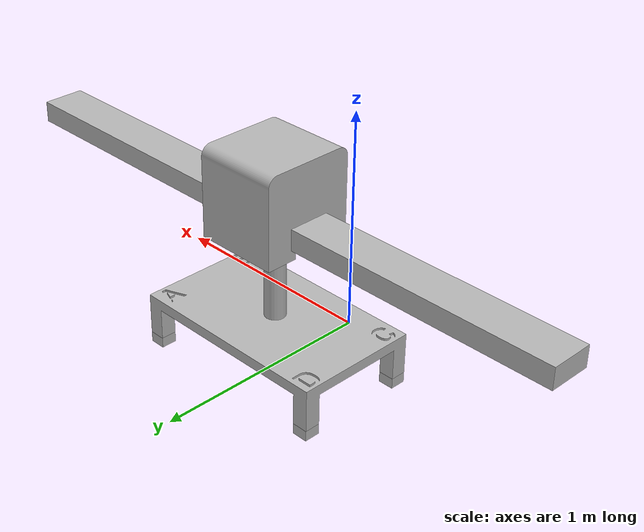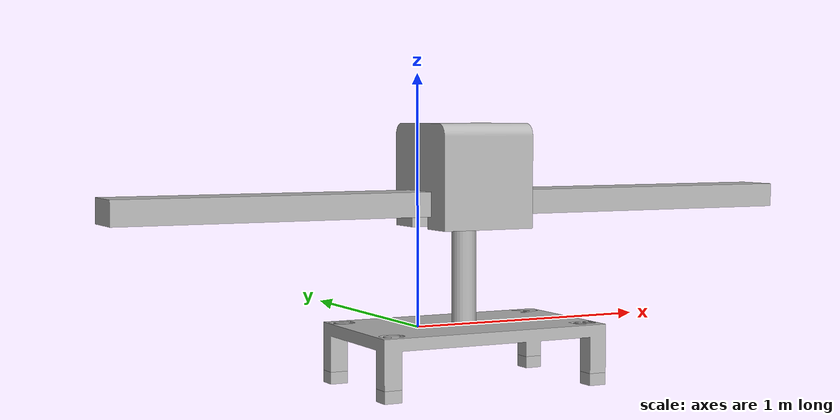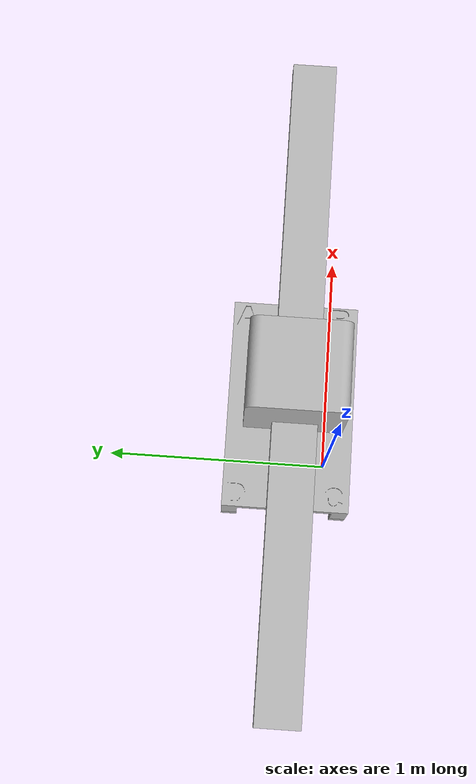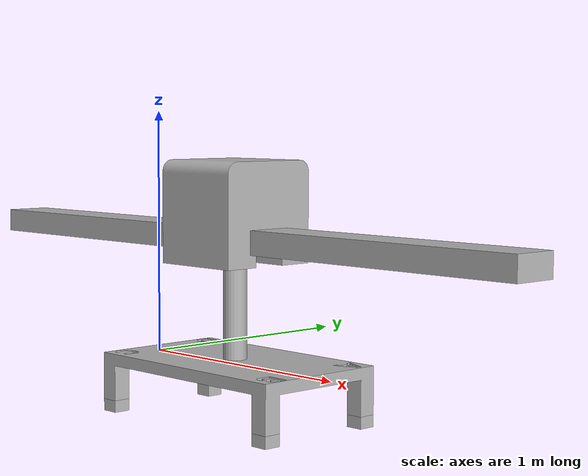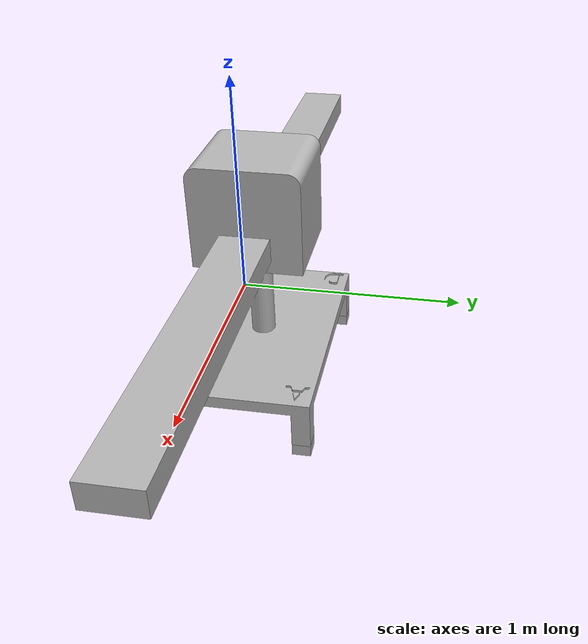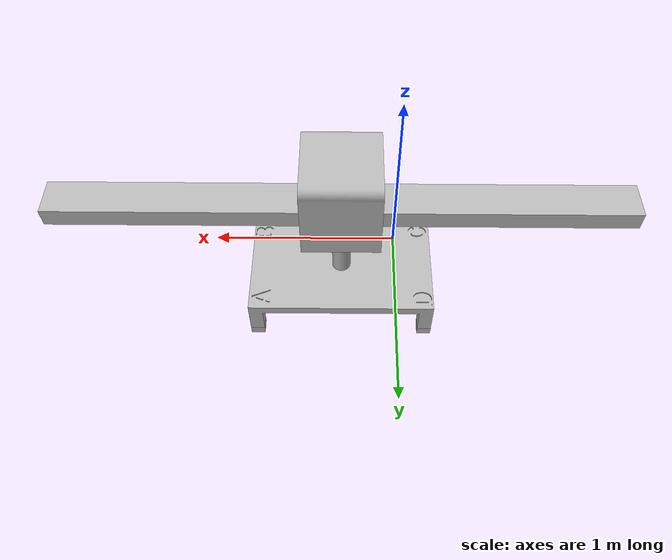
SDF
<?xml version="1.0" ?>
<sdf version='1.7'>
  <model name='loadcell'>

    <link name='base_link'>
      <inertial>
        <pose>0.290078 0.163334 -0.061519 0 -0 0</pose>
        <mass>269.313</mass>
        <inertia>
          <ixx>10.0819</ixx>
          <ixy>-0.018641</ixy>
          <ixz>0.00133902</ixz>
          <iyy>27.5526</iyy>
          <iyz>0.000303762</iyz>
          <izz>36.345</izz>
        </inertia>
      </inertial>

      <collision name='base_link_collision'>
        <pose>0 0 0 0 -0 0</pose>
        <geometry>
          <mesh>
            <scale>0.001 0.001 0.001</scale>
            <uri>model://loadcell_description/meshes/base_link.stl</uri>
          </mesh>
        </geometry>
      </collision>
      <collision name='base_link_fixed_joint_lump__LoadCell_A_1_collision_1'>
        <pose>0 0 0 0 -0 0</pose>
        <geometry>
          <mesh>
            <scale>0.001 0.001 0.001</scale>
            <uri>model://loadcell_description/meshes/LoadCell_A_1.stl</uri>
          </mesh>
        </geometry>
      </collision>
      <collision name='base_link_fixed_joint_lump__LoadCell_B_1_collision_2'>
        <pose>0 0 0 0 -0 0</pose>
        <geometry>
          <mesh>
            <scale>0.001 0.001 0.001</scale>
            <uri>model://loadcell_description/meshes/LoadCell_B_1.stl</uri>
          </mesh>
        </geometry>
      </collision>
      <collision name='base_link_fixed_joint_lump__LoadCell_C_1_collision_3'>
        <pose>0 0 0 0 -0 0</pose>
        <geometry>
          <mesh>
            <scale>0.001 0.001 0.001</scale>
            <uri>model://loadcell_description/meshes/LoadCell_C_1.stl</uri>
          </mesh>
        </geometry>
      </collision>
      <collision name='base_link_fixed_joint_lump__LoadCell_D_1_collision_4'>
        <pose>0 0 0 0 -0 0</pose>
        <geometry>
          <mesh>
            <scale>0.001 0.001 0.001</scale>
            <uri>model://loadcell_description/meshes/LoadCell_D_1.stl</uri>
          </mesh>
        </geometry>
      </collision>
      <visual name='base_link_visual'>
        <pose>0 0 0 0 -0 0</pose>
        <geometry>
          <mesh>
            <scale>0.001 0.001 0.001</scale>
            <uri>model://loadcell_description/meshes/base_link.stl</uri>
          </mesh>
        </geometry>
      </visual>
      <visual name='base_link_fixed_joint_lump__LoadCell_A_1_visual_1'>
        <pose>0 0 0 0 -0 0</pose>
        <geometry>
          <mesh>
            <scale>0.001 0.001 0.001</scale>
            <uri>model://loadcell_description/meshes/LoadCell_A_1.stl</uri>
          </mesh>
        </geometry>
      </visual>
      <visual name='base_link_fixed_joint_lump__LoadCell_B_1_visual_2'>
        <pose>0 0 0 0 -0 0</pose>
        <geometry>
          <mesh>
            <scale>0.001 0.001 0.001</scale>
            <uri>model://loadcell_description/meshes/LoadCell_B_1.stl</uri>
          </mesh>
        </geometry>
      </visual>
      <visual name='base_link_fixed_joint_lump__LoadCell_C_1_visual_3'>
        <pose>0 0 0 0 -0 0</pose>
        <geometry>
          <mesh>
            <scale>0.001 0.001 0.001</scale>
            <uri>model://loadcell_description/meshes/LoadCell_C_1.stl</uri>
          </mesh>
        </geometry>
      </visual>
      <visual name='base_link_fixed_joint_lump__LoadCell_D_1_visual_4'>
        <pose>0 0 0 0 -0 0</pose>
        <geometry>
          <mesh>
            <scale>0.001 0.001 0.001</scale>
            <uri>model://loadcell_description/meshes/LoadCell_D_1.stl</uri>
          </mesh>
        </geometry>
      </visual>
    </link>

    <joint name='am_rotate' type='revolute'>
      <pose relative_to='base_link'>0.290214 0.163365 -0.020011 0 -0 0</pose>
      <parent>base_link</parent>
      <child>arm_1</child>
      <axis>
        <xyz>0 0 1</xyz>
        <limit>
          <lower>-1e+16</lower>
          <upper>1e+16</upper>
        </limit>
        <dynamics>
          <spring_reference>0</spring_reference>
          <spring_stiffness>0</spring_stiffness>
        </dynamics>
      </axis>
    </joint>

    <link name='arm_1'>
      <pose relative_to='am_rotate'>0 0 0 0 -0 0</pose>
      <inertial>
        <pose>0 0 0.484702 0 -0 0</pose>
        <mass>498.744</mass>
        <inertia>
          <ixx>4.42946</ixx>
          <ixy>0</ixy>
          <ixz>0</ixz>
          <iyy>356.109</iyy>
          <iyz>0</iyz>
          <izz>354.855</izz>
        </inertia>
      </inertial>
      <collision name='arm_1_collision'>
        <pose>-0.290214 -0.163365 0.020011 0 -0 0</pose>
        <geometry>
          <mesh>
            <scale>0.001 0.001 0.001</scale>
            <uri>model://loadcell_description/meshes/arm_1.stl</uri>
          </mesh>
        </geometry>
      </collision>
      <visual name='arm_1_visual'>
        <pose>-0.290214 -0.163365 0.020011 0 -0 0</pose>
        <geometry>
          <mesh>
            <scale>0.001 0.001 0.001</scale>
            <uri>model://loadcell_description/meshes/arm_1.stl</uri>
          </mesh>
        </geometry>
      </visual>
    </link>

    <joint name='arm_load_slide' type='prismatic'>
      <pose relative_to='arm_1'>1.5 0 0.55 0 -0 0</pose>
      <parent>arm_1</parent>
      <child>load_1</child>
      <axis>
        <xyz>1 0 0</xyz>
        <limit>
          <lower>-1</lower>
          <upper>1</upper>
          <effort>100</effort>
          <velocity>100</velocity>
        </limit>
        <dynamics>
          <spring_reference>0</spring_reference>
          <spring_stiffness>0</spring_stiffness>
        </dynamics>
      </axis>
    </joint>

    <link name='load_1'>
      <pose relative_to='arm_load_slide'>0 0 0 0 -0 0</pose>
      <inertial>
        <pose>-1.5 0.00315 0.081891 0 -0 0</pose>
        <mass>502.733</mass>
        <inertia>
          <ixx>16.2343</ixx>
          <ixy>0</ixy>
          <ixz>0</ixz>
          <iyy>13.6054</iyy>
          <iyz>0.023195</iyz>
          <izz>16.0351</izz>
        </inertia>
      </inertial>
      <collision name='load_1_collision'>
        <pose>-1.79021 -0.163365 -0.529989 0 -0 0</pose>
        <geometry>
          <mesh>
            <scale>0.001 0.001 0.001</scale>
            <uri>model://loadcell_description/meshes/load_1.stl</uri>
          </mesh>
        </geometry>
      </collision>
      <visual name='load_1_visual'>
        <pose>-1.79021 -0.163365 -0.529989 0 -0 0</pose>
        <geometry>
          <mesh>
            <scale>0.001 0.001 0.001</scale>
            <uri>model://loadcell_description/meshes/load_1.stl</uri>
          </mesh>
        </geometry>
      </visual>
    </link>
  </model>
</sdf>
